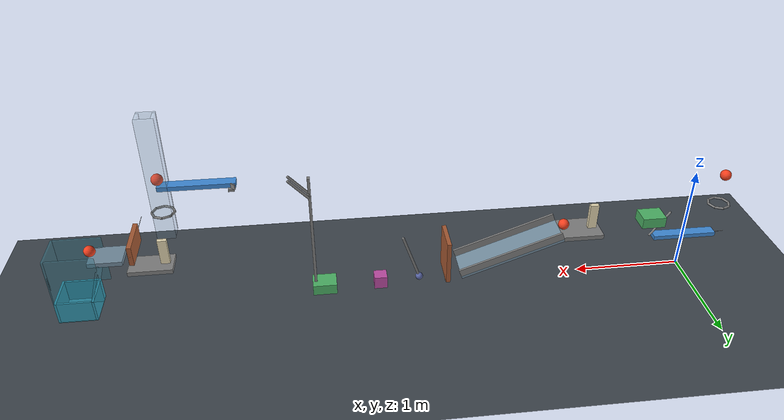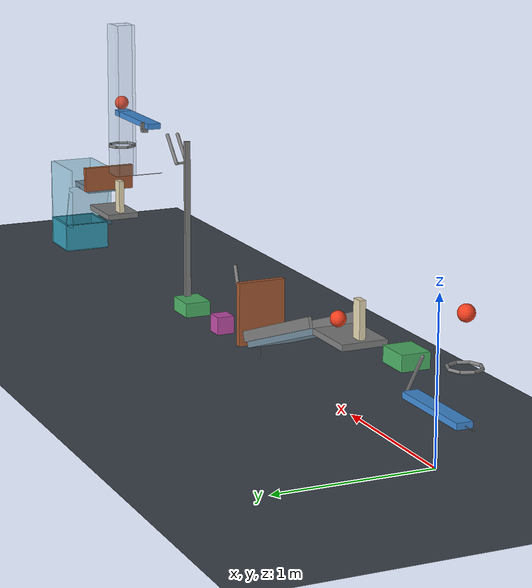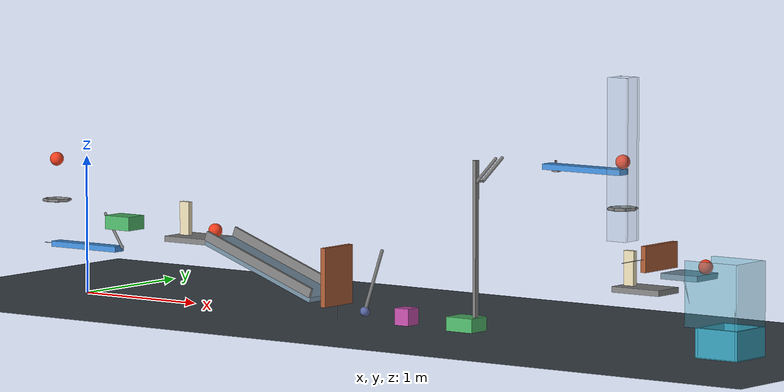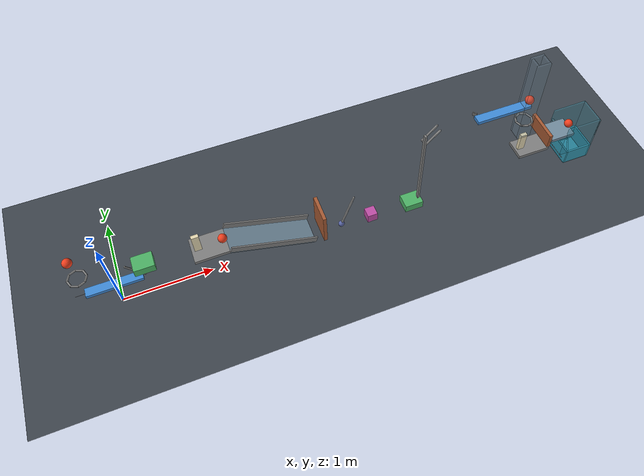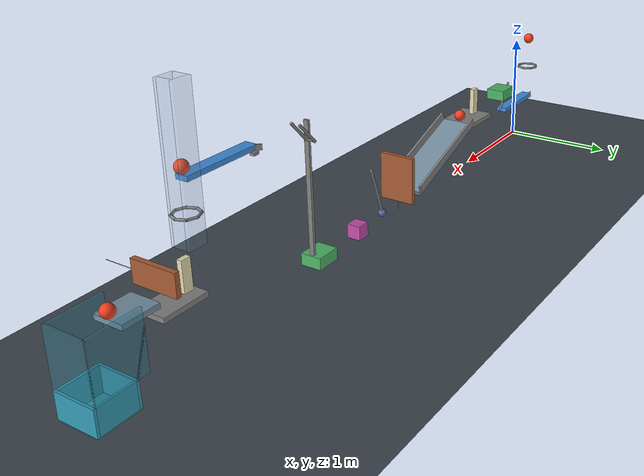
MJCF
<mujoco model="contact_triggered_chain">
  <compiler angle="degree" autolimits="true" inertiafromgeom="auto"/>
  <option timestep="0.002" gravity="0 0 -9.81" integrator="implicitfast" solver="Newton" iterations="100" tolerance="1e-10" cone="elliptic" impratio="5"/>
  <size njmax="3000" nconmax="1000"/>

  <!-- All initial velocities are zero. No motors or timed triggers are used. -->
  <!-- Contact damping ratio 0.71565 approximates restitution 0.04. -->
  <!-- Over-centre tendons have zero initial hinge torque. -->
  <!-- Small dry hinge friction holds their initial configurations until impact. -->

  <worldbody>
    <light name="main_light" pos="2 -3 7" dir="0 0 -1" directional="true"/>
    <camera name="overview" pos="2.8 -7 4" xyaxes="1 0 0 0 .447214 .894427"/>
    <geom name="floor" type="plane" size="8 3 .1" friction=".72 .005 .0001" solref=".004 .71565" rgba=".24 .27 .30 1"/>

    <site name="lever1_spring_anchor" pos="-.40 0 .342020143" size=".003"/>
    <site name="door1_spring_anchor" pos="2.284692621 0 -.16" size=".003"/>
    <site name="flap1_spring_anchor" pos="5.047043478 -.44 .641" size=".003"/>

    <body name="ball1" pos="-.285 0 .962020143">
      <freejoint name="ball1_free"/>
      <geom name="ball1_sphere" type="sphere" size=".05" mass=".20" friction=".72 .005 .0001" solref=".004 .71565" rgba=".95 .25 .12 1"/>
    </body>

    <!-- Minimum clear diameter is 0.16 m. -->
    <body name="ring1" pos="-.285 0 .662020143">
      <geom name="ring1_1" type="capsule" fromto=".097415298 0 0 .068883018 .068883018 0" size=".01" friction=".72 .005 .0001" solref=".004 .71565"/>
      <geom name="ring1_2" type="capsule" fromto=".068883018 .068883018 0 0 .097415298 0" size=".01" friction=".72 .005 .0001" solref=".004 .71565"/>
      <geom name="ring1_3" type="capsule" fromto="0 .097415298 0 -.068883018 .068883018 0" size=".01" friction=".72 .005 .0001" solref=".004 .71565"/>
      <geom name="ring1_4" type="capsule" fromto="-.068883018 .068883018 0 -.097415298 0 0" size=".01" friction=".72 .005 .0001" solref=".004 .71565"/>
      <geom name="ring1_5" type="capsule" fromto="-.097415298 0 0 -.068883018 -.068883018 0" size=".01" friction=".72 .005 .0001" solref=".004 .71565"/>
      <geom name="ring1_6" type="capsule" fromto="-.068883018 -.068883018 0 0 -.097415298 0" size=".01" friction=".72 .005 .0001" solref=".004 .71565"/>
      <geom name="ring1_7" type="capsule" fromto="0 -.097415298 0 .068883018 -.068883018 0" size=".01" friction=".72 .005 .0001" solref=".004 .71565"/>
      <geom name="ring1_8" type="capsule" fromto=".068883018 -.068883018 0 .097415298 0 0" size=".01" friction=".72 .005 .0001" solref=".004 .71565"/>
    </body>

    <body name="lever1" pos="0 0 .342020143">
      <joint name="lever1_hinge" type="hinge" axis="0 -1 0" range="0 45" damping=".04" frictionloss=".01" solreflimit=".004 1" solimplimit=".99 .999 .001"/>
      <geom name="lever1_beam" type="box" size=".30 .05 .02" mass=".50" friction=".72 .005 .0001" solref=".004 .71565" rgba=".25 .55 .85 1"/>
      <site name="lever1_spring_tip" pos=".29 0 0" size=".003"/>
    </body>

    <!-- Descending cam slope 1.50 avoids the previous shallow-cam self-locking. -->
    <body name="cart1" pos=".35 0 .542220143">
      <joint name="cart1_slide" type="slide" axis="1 0 0" range="0 .46" damping=".20" solreflimit=".004 1"/>
      <geom name="cart1_chassis" type="box" size=".11 .09 .05" mass=".50" friction=".72 .005 .0001" solref=".004 .71565" rgba=".30 .70 .40 1"/>
      <geom name="cart1_drive_cam" type="capsule" fromto="-.18 0 .05 -.02 0 -.19" size=".01" mass="0" friction=".72 .005 .0001" solref=".004 .71565"/>
    </body>

    <!-- Horizontal perch prevents ball2 moving before domino1 arrives. -->
    <body name="upper_platform" pos="1.035 0 .472020143">
      <geom name="upper_platform_deck" type="box" size=".19 .15 .02" friction=".72 .005 .0001" solref=".004 .71565"/>
    </body>

    <body name="domino1" pos=".92 0 .612220143">
      <freejoint name="domino1_free"/>
      <geom name="domino1_box" type="box" size=".04 .02 .12" mass=".25" friction=".72 .005 .0001" solref=".004 .71565" rgba=".90 .85 .70 1"/>
    </body>

    <body name="ball2" pos="1.19 0 .542220143">
      <freejoint name="ball2_free"/>
      <geom name="ball2_sphere" type="sphere" size=".05" mass=".20" friction=".72 .005 .0001" solref=".004 .71565" rgba=".95 .25 .12 1"/>
    </body>

    <!-- Main ramp: 1.00 m long, 0.30 m wide, inclined at 20 degrees. -->
    <!-- Low top-surface endpoint: (2.164692621,0,0.15). -->
    <body name="ramp1">
      <geom name="ramp1_surface" type="box" pos="1.688005908 0 .302216219" euler="0 20 0" size=".50 .15 .02" friction=".72 .005 .0001" solref=".004 .71565" rgba=".45 .55 .62 1"/>
      <geom name="ramp1_left_rail" type="box" pos="1.706817016 .16 .353899313" euler="0 20 0" size=".50 .01 .035" friction=".72 .005 .0001" solref=".004 .71565"/>
      <geom name="ramp1_right_rail" type="box" pos="1.706817016 -.16 .353899313" euler="0 20 0" size=".50 .01 .035" friction=".72 .005 .0001" solref=".004 .71565"/>
    </body>

    <!-- Initial panel face is 0.10 m beyond the ramp's low endpoint. -->
    <!-- The spring has no starting torque; ball2 must strike the panel itself. -->
    <body name="door1" pos="2.284692621 0 .09">
      <joint name="door1_hinge" type="hinge" axis="0 1 0" range="0 70" damping=".04" frictionloss=".03" solreflimit=".004 1" solimplimit=".99 .999 .001"/>
      <geom name="door1_panel" type="box" pos="0 0 .21" size=".02 .16 .21" mass=".45" friction=".72 .005 .0001" solref=".004 .71565" rgba=".65 .35 .20 1"/>
      <site name="door1_spring_tip" pos="0 0 .40" size=".003"/>
    </body>

    <!-- Pivot-to-lowest-point length is 0.50 m; total mass is 0.35 kg. -->
    <!-- Initial cant is held by dry friction until the door strikes. -->
    <!-- A 38-degree joint rotation changes the cant from -19 to +19 degrees. -->
    <body name="pendulum1" pos="2.684692621 0 .505" euler="0 19 0">
      <joint name="pendulum1_hinge" type="hinge" axis="0 -1 0" range="0 38" damping=".04" frictionloss=".46" solreflimit=".004 1" solimplimit=".99 .999 .001"/>
      <geom name="pendulum1_rod" type="capsule" fromto="0 0 0 0 0 -.465" size=".012" mass=".10" friction=".72 .005 .0001" solref=".004 .71565"/>
      <geom name="pendulum1_bob" type="sphere" pos="0 0 -.465" size=".035" mass=".25" friction=".72 .005 .0001" solref=".004 .71565" rgba=".35 .40 .65 1"/>
    </body>

    <!-- The bob meets the cube near its centre height during the final swing. -->
    <body name="block1" pos="2.900043478 0 .0602">
      <freejoint name="block1_free"/>
      <geom name="block1_cube" type="box" size=".06 .06 .06" mass=".35" friction=".72 .005 .0001" solref=".004 .71565" rgba=".75 .30 .65 1"/>
    </body>

    <!-- Block1's front face reaches cart2 after 0.35 m of translation. -->
    <body name="cart2" pos="3.420043478 0 .0502">
      <joint name="cart2_slide" type="slide" axis="1 0 0" range="0 .46" damping=".20" solreflimit=".004 1"/>
      <geom name="cart2_chassis" type="box" size=".11 .09 .05" mass=".50" friction=".72 .005 .0001" solref=".004 .71565" rgba=".30 .70 .40 1"/>
      <geom name="cart2_striker_mast" type="box" pos=".08 0 .58" size=".012 .02 .57" mass="0" friction=".72 .005 .0001" solref=".004 .71565"/>
      <geom name="cart2_drive_cam" type="capsule" fromto=".09 0 .9998 .25 0 1.1698" size=".012" mass="0" friction=".72 .005 .0001" solref=".004 .71565"/>
      <geom name="cart2_latch_cam" type="capsule" fromto=".09 .075 .9998 .25 .075 1.1698" size=".012" mass="0" friction=".72 .005 .0001" solref=".004 .71565"/>
      <geom name="cart2_cam_crossbar" type="capsule" fromto=".09 0 .9998 .09 .075 .9998" size=".008" mass="0" friction=".72 .005 .0001" solref=".004 .71565"/>
    </body>

    <!-- Cart2's nose reaches the left end after 0.42 m of translation. -->
    <body name="seesaw1" pos="4.427043478 0 1.20">
      <joint name="seesaw1_hinge" type="hinge" axis="0 -1 0" range="0 42" damping=".04" stiffness="3" springref="42" solreflimit=".004 1" solimplimit=".99 .999 .001"/>
      <geom name="seesaw1_beam" type="box" size=".325 .05 .02" mass=".55" friction=".72 .005 .0001" solref=".004 .71565" rgba=".25 .55 .85 1"/>
    </body>

    <!-- Bearing-supported transverse pin retains the seesaw's spring preload. -->
    <body name="seesaw1_latch" pos="4.427043478 0 1.21">
      <joint name="seesaw1_latch_slide" type="slide" axis="0 1 0" range="0 .07" damping=".20" frictionloss=".012"/>
      <geom name="seesaw1_latch_paddle" type="box" pos="-.3037 .082 0" euler="0 0 45" size=".005 .025 .022" mass=".025" friction=".72 .005 .0001" solref=".004 .71565"/>
      <geom name="seesaw1_latch_bolt" type="box" pos="-.285 .060 -.042" size=".025 .020 .010" mass="0" condim="1" friction=".72 .005 .0001" solref=".004 .71565" solimp=".99 .999 .001"/>
    </body>

    <body name="ball3" pos="4.742043478 0 1.27">
      <freejoint name="ball3_free"/>
      <geom name="ball3_sphere" type="sphere" size=".05" mass=".20" contype="3" conaffinity="3" friction=".72 .005 .0001" solref=".004 .71565" rgba=".95 .25 .12 1"/>
    </body>

    <!-- Idealized ball-only guide faces permit the beam to retract through them. -->
    <body name="ball3_guide" pos="4.742043478 0 1.29">
      <geom name="ball3_guide_left" type="box" pos="-.066 0 0" size=".012 .054 .56" contype="2" conaffinity="2" friction=".72 .005 .0001" solref=".004 .71565" rgba=".50 .65 .75 .22"/>
      <geom name="ball3_guide_right" type="box" pos=".066 0 0" size=".012 .054 .56" contype="2" conaffinity="2" friction=".72 .005 .0001" solref=".004 .71565" rgba=".50 .65 .75 .22"/>
      <geom name="ball3_guide_front" type="box" pos="0 -.066 0" size=".078 .012 .56" contype="2" conaffinity="2" friction=".72 .005 .0001" solref=".004 .71565" rgba=".50 .65 .75 .22"/>
      <geom name="ball3_guide_back" type="box" pos="0 .066 0" size=".078 .012 .56" contype="2" conaffinity="2" friction=".72 .005 .0001" solref=".004 .71565" rgba=".50 .65 .75 .22"/>
    </body>

    <body name="ring2" pos="4.742043478 0 .95">
      <geom name="ring2_1" type="capsule" fromto=".097415298 0 0 .068883018 .068883018 0" size=".01" friction=".72 .005 .0001" solref=".004 .71565"/>
      <geom name="ring2_2" type="capsule" fromto=".068883018 .068883018 0 0 .097415298 0" size=".01" friction=".72 .005 .0001" solref=".004 .71565"/>
      <geom name="ring2_3" type="capsule" fromto="0 .097415298 0 -.068883018 .068883018 0" size=".01" friction=".72 .005 .0001" solref=".004 .71565"/>
      <geom name="ring2_4" type="capsule" fromto="-.068883018 .068883018 0 -.097415298 0 0" size=".01" friction=".72 .005 .0001" solref=".004 .71565"/>
      <geom name="ring2_5" type="capsule" fromto="-.097415298 0 0 -.068883018 -.068883018 0" size=".01" friction=".72 .005 .0001" solref=".004 .71565"/>
      <geom name="ring2_6" type="capsule" fromto="-.068883018 -.068883018 0 0 -.097415298 0" size=".01" friction=".72 .005 .0001" solref=".004 .71565"/>
      <geom name="ring2_7" type="capsule" fromto="0 -.097415298 0 .068883018 -.068883018 0" size=".01" friction=".72 .005 .0001" solref=".004 .71565"/>
      <geom name="ring2_8" type="capsule" fromto=".068883018 -.068883018 0 .097415298 0 0" size=".01" friction=".72 .005 .0001" solref=".004 .71565"/>
    </body>

    <!-- Offset corner impact supplies a forward tipping impulse. -->
    <!-- Nominal ball-centre contact height is 0.24 m below ring2. -->
    <body name="domino2" pos="4.807043478 0 .546698730">
      <freejoint name="domino2_free"/>
      <geom name="domino2_box" type="box" size=".04 .02 .12" mass=".25" friction=".72 .005 .0001" solref=".004 .71565" rgba=".90 .85 .70 1"/>
    </body>

    <body name="domino2_platform" pos="4.932043478 0 .406698730">
      <geom name="domino2_platform_deck" type="box" size=".195 .12 .02" friction=".72 .005 .0001" solref=".004 .71565"/>
    </body>

    <!-- Panel swings clockwise viewed from above; its bottom clears shelf1. -->
    <body name="flap1" pos="5.047043478 -.19 .641">
      <joint name="flap1_hinge" type="hinge" axis="0 0 -1" range="0 60" damping=".04" frictionloss=".015" solreflimit=".004 1" solimplimit=".99 .999 .001"/>
      <geom name="flap1_panel" type="box" pos="0 .19 0" size=".02 .19 .09" mass=".28" friction=".72 .005 .0001" solref=".004 .71565" rgba=".65 .35 .20 1"/>
      <site name="flap1_spring_tip" pos="0 .38 0" size=".003"/>
    </body>

    <body name="ball4" pos="5.429043478 0 .6002">
      <freejoint name="ball4_free"/>
      <geom name="ball4_sphere" type="sphere" size=".05" mass=".20" friction=".72 .005 .0001" solref=".004 .71565" rgba=".95 .25 .12 1"/>
    </body>

    <body name="shelf1" pos="5.294043478 0 .53">
      <geom name="shelf1_board" type="box" size=".15 .125 .02" friction=".72 .005 .0001" solref=".004 .71565" rgba=".45 .55 .62 1"/>
    </body>

    <!-- Inner footprint 0.30 by 0.30 m; wall height 0.20 m; thickness 0.02 m. -->
    <!-- Cup inner floor is z=0, 0.55 m below the shelf top. -->
    <body name="cup1" pos="5.609043478 .035 0">
      <geom name="cup1_base" type="box" pos="0 0 -.01" size=".17 .17 .01" friction=".72 .005 .0001" solref=".004 .71565" rgba=".20 .60 .70 1"/>
      <geom name="cup1_left_wall" type="box" pos="-.16 0 .10" size=".01 .17 .10" friction=".72 .005 .0001" solref=".004 .71565" rgba=".20 .60 .70 1"/>
      <geom name="cup1_right_wall" type="box" pos=".16 0 .10" size=".01 .17 .10" friction=".72 .005 .0001" solref=".004 .71565" rgba=".20 .60 .70 1"/>
      <geom name="cup1_front_wall" type="box" pos="0 -.16 .10" size=".15 .01 .10" friction=".72 .005 .0001" solref=".004 .71565" rgba=".20 .60 .70 1"/>
      <geom name="cup1_back_wall" type="box" pos="0 .16 .10" size=".15 .01 .10" friction=".72 .005 .0001" solref=".004 .71565" rgba=".20 .60 .70 1"/>
    </body>

    <!-- Separate funnel contains lateral motion and guides a slow shelf departure. -->
    <body name="catch_funnel">
      <geom name="catch_funnel_left" type="box" pos="5.399498678 .035 .357017250" euler="0 -17.354025 0" size=".01 .17 .167630546" friction=".72 .005 .0001" solref=".004 .71565" rgba=".20 .60 .70 .35"/>
      <geom name="catch_funnel_right" type="box" pos="5.769043478 .035 .425" size=".01 .17 .225" friction=".72 .005 .0001" solref=".004 .71565" rgba=".20 .60 .70 .35"/>
      <geom name="catch_funnel_front" type="box" pos="5.559043478 -.125 .425" size=".21 .01 .225" friction=".72 .005 .0001" solref=".004 .71565" rgba=".20 .60 .70 .35"/>
      <geom name="catch_funnel_back" type="box" pos="5.559043478 .195 .425" size=".21 .01 .225" friction=".72 .005 .0001" solref=".004 .71565" rgba=".20 .60 .70 .35"/>
    </body>
  </worldbody>

  <tendon>
    <spatial name="lever1_overcentre_spring" stiffness="600" damping="0" springlength=".30 .30" width=".002">
      <site site="lever1_spring_anchor"/>
      <site site="lever1_spring_tip"/>
    </spatial>
    <spatial name="door1_overcentre_spring" stiffness="3000" damping="0" springlength=".30 .30" width=".002">
      <site site="door1_spring_anchor"/>
      <site site="door1_spring_tip"/>
    </spatial>
    <spatial name="flap1_overcentre_spring" stiffness="20" damping="0" springlength=".30 .30" width=".002">
      <site site="flap1_spring_anchor"/>
      <site site="flap1_spring_tip"/>
    </spatial>
  </tendon>

  <keyframe>
    <key name="start" time="0"/>
  </keyframe>
</mujoco>
